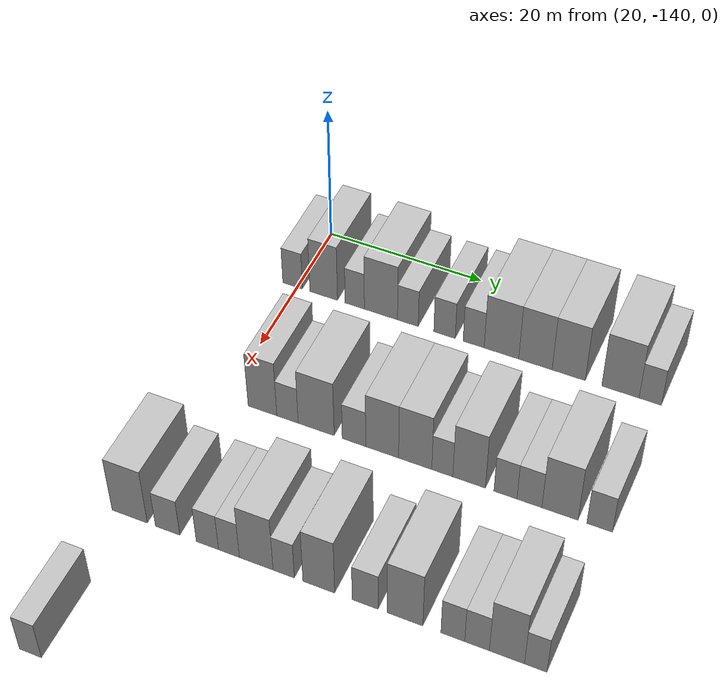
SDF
<sdf version="1.6">
 <world name="default">
  <model name="building_51">
   <static>1</static>
   <pose>25.0000 -140.6154 0 0.000000 0.000000 0.000000</pose>
   <link name="link">
    <pose>0 0 3.00 0 0 0</pose>
    <collision name="collision"><geometry><box><size>10.0000 2.6207 6.0000</size></box></geometry></collision>
    <visual name="visual">
     <cast_shadows>0</cast_shadows>
     <geometry><box><size>10.0000 2.6207 6.0000</size></box></geometry>
     <material>
      <script>
       <uri>model://HANNAS_wall/materials/scripts</uri>
       <uri>model://HANNAS_wall/materials/textures</uri>
       <name>vrc/HANNAS_wall</name>
      </script>
     </material>
    </visual>
   </link>
  </model>
  <model name="building_52">
   <static>1</static>
   <pose>25.0000 -136.4687 0 0.000000 0.000000 0.000000</pose>
   <link name="link">
    <pose>0 0 4.50 0 0 0</pose>
    <collision name="collision"><geometry><box><size>10.0000 3.6727 9.0000</size></box></geometry></collision>
    <visual name="visual">
     <cast_shadows>0</cast_shadows>
     <geometry><box><size>10.0000 3.6727 9.0000</size></box></geometry>
     <material>
      <script>
       <uri>model://HANNAS_wall/materials/scripts</uri>
       <uri>model://HANNAS_wall/materials/textures</uri>
       <name>vrc/HANNAS_wall</name>
      </script>
     </material>
    </visual>
   </link>
  </model>
  <model name="building_53">
   <static>1</static>
   <pose>25.0000 -132.3696 0 0.000000 0.000000 0.000000</pose>
   <link name="link">
    <pose>0 0 3.00 0 0 0</pose>
    <collision name="collision"><geometry><box><size>10.0000 2.5254 6.0000</size></box></geometry></collision>
    <visual name="visual">
     <cast_shadows>0</cast_shadows>
     <geometry><box><size>10.0000 2.5254 6.0000</size></box></geometry>
     <material>
      <script>
       <uri>model://HANNAS_wall/materials/scripts</uri>
       <uri>model://HANNAS_wall/materials/textures</uri>
       <name>vrc/HANNAS_wall</name>
      </script>
     </material>
    </visual>
   </link>
  </model>
  <model name="building_54">
   <static>1</static>
   <pose>25.0000 -128.9481 0 0.000000 0.000000 0.000000</pose>
   <link name="link">
    <pose>0 0 4.50 0 0 0</pose>
    <collision name="collision"><geometry><box><size>10.0000 4.3176 9.0000</size></box></geometry></collision>
    <visual name="visual">
     <cast_shadows>0</cast_shadows>
     <geometry><box><size>10.0000 4.3176 9.0000</size></box></geometry>
     <material>
      <script>
       <uri>model://HANNAS_wall/materials/scripts</uri>
       <uri>model://HANNAS_wall/materials/textures</uri>
       <name>vrc/HANNAS_wall</name>
      </script>
     </material>
    </visual>
   </link>
  </model>
  <model name="building_55">
   <static>1</static>
   <pose>25.0000 -125.4472 0 0.000000 0.000000 0.000000</pose>
   <link name="link">
    <pose>0 0 3.00 0 0 0</pose>
    <collision name="collision"><geometry><box><size>10.0000 2.6842 6.0000</size></box></geometry></collision>
    <visual name="visual">
     <cast_shadows>0</cast_shadows>
     <geometry><box><size>10.0000 2.6842 6.0000</size></box></geometry>
     <material>
      <script>
       <uri>model://HANNAS_wall/materials/scripts</uri>
       <uri>model://HANNAS_wall/materials/textures</uri>
       <name>vrc/HANNAS_wall</name>
      </script>
     </material>
    </visual>
   </link>
  </model>
  <model name="building_56">
   <static>1</static>
   <pose>25.0000 -120.7396 0 0.000000 0.000000 0.000000</pose>
   <link name="link">
    <pose>0 0 3.00 0 0 0</pose>
    <collision name="collision"><geometry><box><size>10.0000 2.7311 6.0000</size></box></geometry></collision>
    <visual name="visual">
     <cast_shadows>0</cast_shadows>
     <geometry><box><size>10.0000 2.7311 6.0000</size></box></geometry>
     <material>
      <script>
       <uri>model://HANNAS_wall/materials/scripts</uri>
       <uri>model://HANNAS_wall/materials/textures</uri>
       <name>vrc/HANNAS_wall</name>
      </script>
     </material>
    </visual>
   </link>
  </model>
  <model name="building_57">
   <static>1</static>
   <pose>25.0000 -117.0441 0 0.000000 0.000000 0.000000</pose>
   <link name="link">
    <pose>0 0 3.00 0 0 0</pose>
    <collision name="collision"><geometry><box><size>10.0000 2.6599 6.0000</size></box></geometry></collision>
    <visual name="visual">
     <cast_shadows>0</cast_shadows>
     <geometry><box><size>10.0000 2.6599 6.0000</size></box></geometry>
     <material>
      <script>
       <uri>model://HANNAS_wall/materials/scripts</uri>
       <uri>model://HANNAS_wall/materials/textures</uri>
       <name>vrc/HANNAS_wall</name>
      </script>
     </material>
    </visual>
   </link>
  </model>
  <model name="building_58">
   <static>1</static>
   <pose>25.0000 -113.5493 0 0.000000 0.000000 0.000000</pose>
   <link name="link">
    <pose>0 0 4.50 0 0 0</pose>
    <collision name="collision"><geometry><box><size>10.0000 4.3296 9.0000</size></box></geometry></collision>
    <visual name="visual">
     <cast_shadows>0</cast_shadows>
     <geometry><box><size>10.0000 4.3296 9.0000</size></box></geometry>
     <material>
      <script>
       <uri>model://HANNAS_wall/materials/scripts</uri>
       <uri>model://HANNAS_wall/materials/textures</uri>
       <name>vrc/HANNAS_wall</name>
      </script>
     </material>
    </visual>
   </link>
  </model>
  <model name="building_59">
   <static>1</static>
   <pose>25.0000 -109.3174 0 0.000000 0.000000 0.000000</pose>
   <link name="link">
    <pose>0 0 4.50 0 0 0</pose>
    <collision name="collision"><geometry><box><size>10.0000 4.1342 9.0000</size></box></geometry></collision>
    <visual name="visual">
     <cast_shadows>0</cast_shadows>
     <geometry><box><size>10.0000 4.1342 9.0000</size></box></geometry>
     <material>
      <script>
       <uri>model://HANNAS_wall/materials/scripts</uri>
       <uri>model://HANNAS_wall/materials/textures</uri>
       <name>vrc/HANNAS_wall</name>
      </script>
     </material>
    </visual>
   </link>
  </model>
  <model name="building_60">
   <static>1</static>
   <pose>25.0000 -105.2141 0 0.000000 0.000000 0.000000</pose>
   <link name="link">
    <pose>0 0 4.50 0 0 0</pose>
    <collision name="collision"><geometry><box><size>10.0000 4.0724 9.0000</size></box></geometry></collision>
    <visual name="visual">
     <cast_shadows>0</cast_shadows>
     <geometry><box><size>10.0000 4.0724 9.0000</size></box></geometry>
     <material>
      <script>
       <uri>model://HANNAS_wall/materials/scripts</uri>
       <uri>model://HANNAS_wall/materials/textures</uri>
       <name>vrc/HANNAS_wall</name>
      </script>
     </material>
    </visual>
   </link>
  </model>
  <model name="building_61">
   <static>1</static>
   <pose>25.0000 -98.9353 0 0.000000 0.000000 0.000000</pose>
   <link name="link">
    <pose>0 0 4.50 0 0 0</pose>
    <collision name="collision"><geometry><box><size>10.0000 4.4851 9.0000</size></box></geometry></collision>
    <visual name="visual">
     <cast_shadows>0</cast_shadows>
     <geometry><box><size>10.0000 4.4851 9.0000</size></box></geometry>
     <material>
      <script>
       <uri>model://HANNAS_wall/materials/scripts</uri>
       <uri>model://HANNAS_wall/materials/textures</uri>
       <name>vrc/HANNAS_wall</name>
      </script>
     </material>
    </visual>
   </link>
  </model>
  <model name="building_62">
   <static>1</static>
   <pose>25.0000 -95.3557 0 0.000000 0.000000 0.000000</pose>
   <link name="link">
    <pose>0 0 3.00 0 0 0</pose>
    <collision name="collision"><geometry><box><size>10.0000 2.6743 6.0000</size></box></geometry></collision>
    <visual name="visual">
     <cast_shadows>0</cast_shadows>
     <geometry><box><size>10.0000 2.6743 6.0000</size></box></geometry>
     <material>
      <script>
       <uri>model://HANNAS_wall/materials/scripts</uri>
       <uri>model://HANNAS_wall/materials/textures</uri>
       <name>vrc/HANNAS_wall</name>
      </script>
     </material>
    </visual>
   </link>
  </model>
  <model name="building_223">
   <static>1</static>
   <pose>44.0000 -135.3508 0 0.000000 0.000000 0.000000</pose>
   <link name="link">
    <pose>0 0 4.50 0 0 0</pose>
    <collision name="collision"><geometry><box><size>10.0000 3.6212 9.0000</size></box></geometry></collision>
    <visual name="visual">
     <cast_shadows>0</cast_shadows>
     <geometry><box><size>10.0000 3.6212 9.0000</size></box></geometry>
     <material>
      <script>
       <uri>model://HANNAS_wall/materials/scripts</uri>
       <uri>model://HANNAS_wall/materials/textures</uri>
       <name>vrc/HANNAS_wall</name>
      </script>
     </material>
    </visual>
   </link>
  </model>
  <model name="building_224">
   <static>1</static>
   <pose>44.0000 -132.1997 0 0.000000 0.000000 0.000000</pose>
   <link name="link">
    <pose>0 0 3.00 0 0 0</pose>
    <collision name="collision"><geometry><box><size>10.0000 2.6811 6.0000</size></box></geometry></collision>
    <visual name="visual">
     <cast_shadows>0</cast_shadows>
     <geometry><box><size>10.0000 2.6811 6.0000</size></box></geometry>
     <material>
      <script>
       <uri>model://HANNAS_wall/materials/scripts</uri>
       <uri>model://HANNAS_wall/materials/textures</uri>
       <name>vrc/HANNAS_wall</name>
      </script>
     </material>
    </visual>
   </link>
  </model>
  <model name="building_225">
   <static>1</static>
   <pose>44.0000 -128.6214 0 0.000000 0.000000 0.000000</pose>
   <link name="link">
    <pose>0 0 4.50 0 0 0</pose>
    <collision name="collision"><geometry><box><size>10.0000 4.4756 9.0000</size></box></geometry></collision>
    <visual name="visual">
     <cast_shadows>0</cast_shadows>
     <geometry><box><size>10.0000 4.4756 9.0000</size></box></geometry>
     <material>
      <script>
       <uri>model://HANNAS_wall/materials/scripts</uri>
       <uri>model://HANNAS_wall/materials/textures</uri>
       <name>vrc/HANNAS_wall</name>
      </script>
     </material>
    </visual>
   </link>
  </model>
  <model name="building_226">
   <static>1</static>
   <pose>44.0000 -123.9453 0 0.000000 0.000000 0.000000</pose>
   <link name="link">
    <pose>0 0 3.00 0 0 0</pose>
    <collision name="collision"><geometry><box><size>10.0000 2.8765 6.0000</size></box></geometry></collision>
    <visual name="visual">
     <cast_shadows>0</cast_shadows>
     <geometry><box><size>10.0000 2.8765 6.0000</size></box></geometry>
     <material>
      <script>
       <uri>model://HANNAS_wall/materials/scripts</uri>
       <uri>model://HANNAS_wall/materials/textures</uri>
       <name>vrc/HANNAS_wall</name>
      </script>
     </material>
    </visual>
   </link>
  </model>
  <model name="building_227">
   <static>1</static>
   <pose>44.0000 -120.5067 0 0.000000 0.000000 0.000000</pose>
   <link name="link">
    <pose>0 0 4.50 0 0 0</pose>
    <collision name="collision"><geometry><box><size>10.0000 4.0007 9.0000</size></box></geometry></collision>
    <visual name="visual">
     <cast_shadows>0</cast_shadows>
     <geometry><box><size>10.0000 4.0007 9.0000</size></box></geometry>
     <material>
      <script>
       <uri>model://HANNAS_wall/materials/scripts</uri>
       <uri>model://HANNAS_wall/materials/textures</uri>
       <name>vrc/HANNAS_wall</name>
      </script>
     </material>
    </visual>
   </link>
  </model>
  <model name="building_228">
   <static>1</static>
   <pose>44.0000 -116.5102 0 0.000000 0.000000 0.000000</pose>
   <link name="link">
    <pose>0 0 4.50 0 0 0</pose>
    <collision name="collision"><geometry><box><size>10.0000 3.9921 9.0000</size></box></geometry></collision>
    <visual name="visual">
     <cast_shadows>0</cast_shadows>
     <geometry><box><size>10.0000 3.9921 9.0000</size></box></geometry>
     <material>
      <script>
       <uri>model://HANNAS_wall/materials/scripts</uri>
       <uri>model://HANNAS_wall/materials/textures</uri>
       <name>vrc/HANNAS_wall</name>
      </script>
     </material>
    </visual>
   </link>
  </model>
  <model name="building_229">
   <static>1</static>
   <pose>44.0000 -113.2569 0 0.000000 0.000000 0.000000</pose>
   <link name="link">
    <pose>0 0 3.00 0 0 0</pose>
    <collision name="collision"><geometry><box><size>10.0000 2.5146 6.0000</size></box></geometry></collision>
    <visual name="visual">
     <cast_shadows>0</cast_shadows>
     <geometry><box><size>10.0000 2.5146 6.0000</size></box></geometry>
     <material>
      <script>
       <uri>model://HANNAS_wall/materials/scripts</uri>
       <uri>model://HANNAS_wall/materials/textures</uri>
       <name>vrc/HANNAS_wall</name>
      </script>
     </material>
    </visual>
   </link>
  </model>
  <model name="building_230">
   <static>1</static>
   <pose>44.0000 -110.0744 0 0.000000 0.000000 0.000000</pose>
   <link name="link">
    <pose>0 0 4.50 0 0 0</pose>
    <collision name="collision"><geometry><box><size>10.0000 3.8503 9.0000</size></box></geometry></collision>
    <visual name="visual">
     <cast_shadows>0</cast_shadows>
     <geometry><box><size>10.0000 3.8503 9.0000</size></box></geometry>
     <material>
      <script>
       <uri>model://HANNAS_wall/materials/scripts</uri>
       <uri>model://HANNAS_wall/materials/textures</uri>
       <name>vrc/HANNAS_wall</name>
      </script>
     </material>
    </visual>
   </link>
  </model>
  <model name="building_231">
   <static>1</static>
   <pose>44.0000 -105.8061 0 0.000000 0.000000 0.000000</pose>
   <link name="link">
    <pose>0 0 3.00 0 0 0</pose>
    <collision name="collision"><geometry><box><size>10.0000 2.6864 6.0000</size></box></geometry></collision>
    <visual name="visual">
     <cast_shadows>0</cast_shadows>
     <geometry><box><size>10.0000 2.6864 6.0000</size></box></geometry>
     <material>
      <script>
       <uri>model://HANNAS_wall/materials/scripts</uri>
       <uri>model://HANNAS_wall/materials/textures</uri>
       <name>vrc/HANNAS_wall</name>
      </script>
     </material>
    </visual>
   </link>
  </model>
  <model name="building_232">
   <static>1</static>
   <pose>44.0000 -103.0163 0 0.000000 0.000000 0.000000</pose>
   <link name="link">
    <pose>0 0 3.00 0 0 0</pose>
    <collision name="collision"><geometry><box><size>10.0000 2.8933 6.0000</size></box></geometry></collision>
    <visual name="visual">
     <cast_shadows>0</cast_shadows>
     <geometry><box><size>10.0000 2.8933 6.0000</size></box></geometry>
     <material>
      <script>
       <uri>model://HANNAS_wall/materials/scripts</uri>
       <uri>model://HANNAS_wall/materials/textures</uri>
       <name>vrc/HANNAS_wall</name>
      </script>
     </material>
    </visual>
   </link>
  </model>
  <model name="building_233">
   <static>1</static>
   <pose>44.0000 -99.4954 0 0.000000 0.000000 0.000000</pose>
   <link name="link">
    <pose>0 0 4.50 0 0 0</pose>
    <collision name="collision"><geometry><box><size>10.0000 4.1485 9.0000</size></box></geometry></collision>
    <visual name="visual">
     <cast_shadows>0</cast_shadows>
     <geometry><box><size>10.0000 4.1485 9.0000</size></box></geometry>
     <material>
      <script>
       <uri>model://HANNAS_wall/materials/scripts</uri>
       <uri>model://HANNAS_wall/materials/textures</uri>
       <name>vrc/HANNAS_wall</name>
      </script>
     </material>
    </visual>
   </link>
  </model>
  <model name="building_234">
   <static>1</static>
   <pose>44.0000 -94.9678 0 0.000000 0.000000 0.000000</pose>
   <link name="link">
    <pose>0 0 3.00 0 0 0</pose>
    <collision name="collision"><geometry><box><size>10.0000 2.9065 6.0000</size></box></geometry></collision>
    <visual name="visual">
     <cast_shadows>0</cast_shadows>
     <geometry><box><size>10.0000 2.9065 6.0000</size></box></geometry>
     <material>
      <script>
       <uri>model://HANNAS_wall/materials/scripts</uri>
       <uri>model://HANNAS_wall/materials/textures</uri>
       <name>vrc/HANNAS_wall</name>
      </script>
     </material>
    </visual>
   </link>
  </model>
  <model name="building_393">
   <static>1</static>
   <pose>63.0000 -142.0065 0 0.000000 0.000000 0.000000</pose>
   <link name="link">
    <pose>0 0 4.50 0 0 0</pose>
    <collision name="collision"><geometry><box><size>10.0000 4.3251 9.0000</size></box></geometry></collision>
    <visual name="visual">
     <cast_shadows>0</cast_shadows>
     <geometry><box><size>10.0000 4.3251 9.0000</size></box></geometry>
     <material>
      <script>
       <uri>model://HANNAS_wall/materials/scripts</uri>
       <uri>model://HANNAS_wall/materials/textures</uri>
       <name>vrc/HANNAS_wall</name>
      </script>
     </material>
    </visual>
   </link>
  </model>
  <model name="building_394">
   <static>1</static>
   <pose>63.0000 -137.3670 0 0.000000 0.000000 0.000000</pose>
   <link name="link">
    <pose>0 0 3.00 0 0 0</pose>
    <collision name="collision"><geometry><box><size>10.0000 2.9540 6.0000</size></box></geometry></collision>
    <visual name="visual">
     <cast_shadows>0</cast_shadows>
     <geometry><box><size>10.0000 2.9540 6.0000</size></box></geometry>
     <material>
      <script>
       <uri>model://HANNAS_wall/materials/scripts</uri>
       <uri>model://HANNAS_wall/materials/textures</uri>
       <name>vrc/HANNAS_wall</name>
      </script>
     </material>
    </visual>
   </link>
  </model>
  <model name="building_395">
   <static>1</static>
   <pose>63.0000 -132.5584 0 0.000000 0.000000 0.000000</pose>
   <link name="link">
    <pose>0 0 3.00 0 0 0</pose>
    <collision name="collision"><geometry><box><size>10.0000 2.6632 6.0000</size></box></geometry></collision>
    <visual name="visual">
     <cast_shadows>0</cast_shadows>
     <geometry><box><size>10.0000 2.6632 6.0000</size></box></geometry>
     <material>
      <script>
       <uri>model://HANNAS_wall/materials/scripts</uri>
       <uri>model://HANNAS_wall/materials/textures</uri>
       <name>vrc/HANNAS_wall</name>
      </script>
     </material>
    </visual>
   </link>
  </model>
  <model name="building_396">
   <static>1</static>
   <pose>63.0000 -129.9865 0 0.000000 0.000000 0.000000</pose>
   <link name="link">
    <pose>0 0 3.00 0 0 0</pose>
    <collision name="collision"><geometry><box><size>10.0000 2.4807 6.0000</size></box></geometry></collision>
    <visual name="visual">
     <cast_shadows>0</cast_shadows>
     <geometry><box><size>10.0000 2.4807 6.0000</size></box></geometry>
     <material>
      <script>
       <uri>model://HANNAS_wall/materials/scripts</uri>
       <uri>model://HANNAS_wall/materials/textures</uri>
       <name>vrc/HANNAS_wall</name>
      </script>
     </material>
    </visual>
   </link>
  </model>
  <model name="building_397">
   <static>1</static>
   <pose>63.0000 -126.7613 0 0.000000 0.000000 0.000000</pose>
   <link name="link">
    <pose>0 0 4.50 0 0 0</pose>
    <collision name="collision"><geometry><box><size>10.0000 3.9696 9.0000</size></box></geometry></collision>
    <visual name="visual">
     <cast_shadows>0</cast_shadows>
     <geometry><box><size>10.0000 3.9696 9.0000</size></box></geometry>
     <material>
      <script>
       <uri>model://HANNAS_wall/materials/scripts</uri>
       <uri>model://HANNAS_wall/materials/textures</uri>
       <name>vrc/HANNAS_wall</name>
      </script>
     </material>
    </visual>
   </link>
  </model>
  <model name="building_398">
   <static>1</static>
   <pose>63.0000 -123.5335 0 0.000000 0.000000 0.000000</pose>
   <link name="link">
    <pose>0 0 3.00 0 0 0</pose>
    <collision name="collision"><geometry><box><size>10.0000 2.4860 6.0000</size></box></geometry></collision>
    <visual name="visual">
     <cast_shadows>0</cast_shadows>
     <geometry><box><size>10.0000 2.4860 6.0000</size></box></geometry>
     <material>
      <script>
       <uri>model://HANNAS_wall/materials/scripts</uri>
       <uri>model://HANNAS_wall/materials/textures</uri>
       <name>vrc/HANNAS_wall</name>
      </script>
     </material>
    </visual>
   </link>
  </model>
  <model name="building_399">
   <static>1</static>
   <pose>63.0000 -119.4586 0 0.000000 0.000000 0.000000</pose>
   <link name="link">
    <pose>0 0 4.50 0 0 0</pose>
    <collision name="collision"><geometry><box><size>10.0000 3.6638 9.0000</size></box></geometry></collision>
    <visual name="visual">
     <cast_shadows>0</cast_shadows>
     <geometry><box><size>10.0000 3.6638 9.0000</size></box></geometry>
     <material>
      <script>
       <uri>model://HANNAS_wall/materials/scripts</uri>
       <uri>model://HANNAS_wall/materials/textures</uri>
       <name>vrc/HANNAS_wall</name>
      </script>
     </material>
    </visual>
   </link>
  </model>
  <model name="building_400">
   <static>1</static>
   <pose>63.0000 -114.1559 0 0.000000 0.000000 0.000000</pose>
   <link name="link">
    <pose>0 0 3.00 0 0 0</pose>
    <collision name="collision"><geometry><box><size>10.0000 2.9416 6.0000</size></box></geometry></collision>
    <visual name="visual">
     <cast_shadows>0</cast_shadows>
     <geometry><box><size>10.0000 2.9416 6.0000</size></box></geometry>
     <material>
      <script>
       <uri>model://HANNAS_wall/materials/scripts</uri>
       <uri>model://HANNAS_wall/materials/textures</uri>
       <name>vrc/HANNAS_wall</name>
      </script>
     </material>
    </visual>
   </link>
  </model>
  <model name="building_401">
   <static>1</static>
   <pose>63.0000 -109.6640 0 0.000000 0.000000 0.000000</pose>
   <link name="link">
    <pose>0 0 4.50 0 0 0</pose>
    <collision name="collision"><geometry><box><size>10.0000 4.0421 9.0000</size></box></geometry></collision>
    <visual name="visual">
     <cast_shadows>0</cast_shadows>
     <geometry><box><size>10.0000 4.0421 9.0000</size></box></geometry>
     <material>
      <script>
       <uri>model://HANNAS_wall/materials/scripts</uri>
       <uri>model://HANNAS_wall/materials/textures</uri>
       <name>vrc/HANNAS_wall</name>
      </script>
     </material>
    </visual>
   </link>
  </model>
  <model name="building_402">
   <static>1</static>
   <pose>63.0000 -104.3299 0 0.000000 0.000000 0.000000</pose>
   <link name="link">
    <pose>0 0 3.00 0 0 0</pose>
    <collision name="collision"><geometry><box><size>10.0000 2.6261 6.0000</size></box></geometry></collision>
    <visual name="visual">
     <cast_shadows>0</cast_shadows>
     <geometry><box><size>10.0000 2.6261 6.0000</size></box></geometry>
     <material>
      <script>
       <uri>model://HANNAS_wall/materials/scripts</uri>
       <uri>model://HANNAS_wall/materials/textures</uri>
       <name>vrc/HANNAS_wall</name>
      </script>
     </material>
    </visual>
   </link>
  </model>
  <model name="building_403">
   <static>1</static>
   <pose>63.0000 -101.6660 0 0.000000 0.000000 0.000000</pose>
   <link name="link">
    <pose>0 0 3.00 0 0 0</pose>
    <collision name="collision"><geometry><box><size>10.0000 2.7016 6.0000</size></box></geometry></collision>
    <visual name="visual">
     <cast_shadows>0</cast_shadows>
     <geometry><box><size>10.0000 2.7016 6.0000</size></box></geometry>
     <material>
      <script>
       <uri>model://HANNAS_wall/materials/scripts</uri>
       <uri>model://HANNAS_wall/materials/textures</uri>
       <name>vrc/HANNAS_wall</name>
      </script>
     </material>
    </visual>
   </link>
  </model>
  <model name="building_404">
   <static>1</static>
   <pose>63.0000 -98.4084 0 0.000000 0.000000 0.000000</pose>
   <link name="link">
    <pose>0 0 4.50 0 0 0</pose>
    <collision name="collision"><geometry><box><size>10.0000 3.8136 9.0000</size></box></geometry></collision>
    <visual name="visual">
     <cast_shadows>0</cast_shadows>
     <geometry><box><size>10.0000 3.8136 9.0000</size></box></geometry>
     <material>
      <script>
       <uri>model://HANNAS_wall/materials/scripts</uri>
       <uri>model://HANNAS_wall/materials/textures</uri>
       <name>vrc/HANNAS_wall</name>
      </script>
     </material>
    </visual>
   </link>
  </model>
  <model name="building_405">
   <static>1</static>
   <pose>63.0000 -95.2938 0 0.000000 0.000000 0.000000</pose>
   <link name="link">
    <pose>0 0 3.00 0 0 0</pose>
    <collision name="collision"><geometry><box><size>10.0000 2.4156 6.0000</size></box></geometry></collision>
    <visual name="visual">
     <cast_shadows>0</cast_shadows>
     <geometry><box><size>10.0000 2.4156 6.0000</size></box></geometry>
     <material>
      <script>
       <uri>model://HANNAS_wall/materials/scripts</uri>
       <uri>model://HANNAS_wall/materials/textures</uri>
       <name>vrc/HANNAS_wall</name>
      </script>
     </material>
    </visual>
   </link>
  </model>
  <model name="building_571">
   <static>1</static>
   <pose>82.0000 -142.9501 0 0.000000 0.000000 0.000000</pose>
   <link name="link">
    <pose>0 0 3.00 0 0 0</pose>
    <collision name="collision"><geometry><box><size>10.0000 2.5818 6.0000</size></box></geometry></collision>
    <visual name="visual">
     <cast_shadows>0</cast_shadows>
     <geometry><box><size>10.0000 2.5818 6.0000</size></box></geometry>
     <material>
      <script>
       <uri>model://HANNAS_wall/materials/scripts</uri>
       <uri>model://HANNAS_wall/materials/textures</uri>
       <name>vrc/HANNAS_wall</name>
      </script>
     </material>
    </visual>
   </link>
  </model>
 </world>
</sdf>
